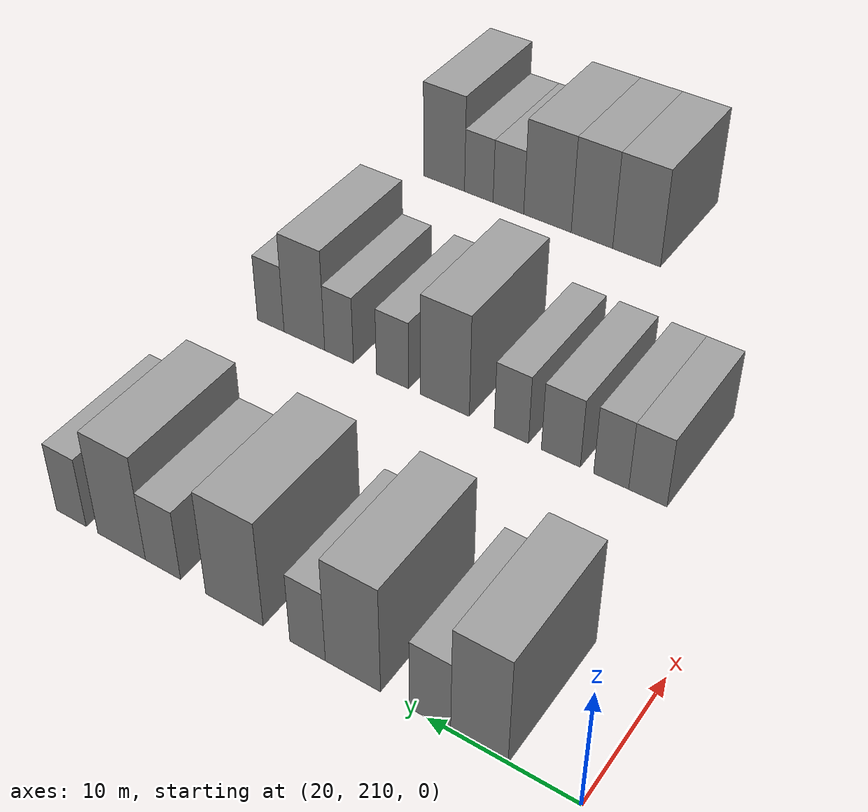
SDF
<sdf version="1.6">
 <world name="default">
  <model name="building_118">
   <static>1</static>
   <pose>25.0000 216.5295 0 0.000000 0.000000 0.000000</pose>
   <link name="link">
    <pose>0 0 4.50 0 0 0</pose>
    <collision name="collision"><geometry><box><size>10.0000 3.7720 9.0000</size></box></geometry></collision>
    <visual name="visual">
     <cast_shadows>0</cast_shadows>
     <geometry><box><size>10.0000 3.7720 9.0000</size></box></geometry>
     <material>
      <script>
       <uri>model://grey_wall/materials/scripts</uri>
       <uri>model://grey_wall/materials/textures</uri>
       <name>vrc/grey_wall</name>
      </script>
     </material>
    </visual>
   </link>
  </model>
  <model name="building_119">
   <static>1</static>
   <pose>25.0000 219.8088 0 0.000000 0.000000 0.000000</pose>
   <link name="link">
    <pose>0 0 3.00 0 0 0</pose>
    <collision name="collision"><geometry><box><size>10.0000 2.7865 6.0000</size></box></geometry></collision>
    <visual name="visual">
     <cast_shadows>0</cast_shadows>
     <geometry><box><size>10.0000 2.7865 6.0000</size></box></geometry>
     <material>
      <script>
       <uri>model://grey_wall/materials/scripts</uri>
       <uri>model://grey_wall/materials/textures</uri>
       <name>vrc/grey_wall</name>
      </script>
     </material>
    </visual>
   </link>
  </model>
  <model name="building_120">
   <static>1</static>
   <pose>25.0000 225.1686 0 0.000000 0.000000 0.000000</pose>
   <link name="link">
    <pose>0 0 4.50 0 0 0</pose>
    <collision name="collision"><geometry><box><size>10.0000 3.9332 9.0000</size></box></geometry></collision>
    <visual name="visual">
     <cast_shadows>0</cast_shadows>
     <geometry><box><size>10.0000 3.9332 9.0000</size></box></geometry>
     <material>
      <script>
       <uri>model://grey_wall/materials/scripts</uri>
       <uri>model://grey_wall/materials/textures</uri>
       <name>vrc/grey_wall</name>
      </script>
     </material>
    </visual>
   </link>
  </model>
  <model name="building_121">
   <static>1</static>
   <pose>25.0000 228.4403 0 0.000000 0.000000 0.000000</pose>
   <link name="link">
    <pose>0 0 3.00 0 0 0</pose>
    <collision name="collision"><geometry><box><size>10.0000 2.6103 6.0000</size></box></geometry></collision>
    <visual name="visual">
     <cast_shadows>0</cast_shadows>
     <geometry><box><size>10.0000 2.6103 6.0000</size></box></geometry>
     <material>
      <script>
       <uri>model://grey_wall/materials/scripts</uri>
       <uri>model://grey_wall/materials/textures</uri>
       <name>vrc/grey_wall</name>
      </script>
     </material>
    </visual>
   </link>
  </model>
  <model name="building_122">
   <static>1</static>
   <pose>25.0000 233.9627 0 0.000000 0.000000 0.000000</pose>
   <link name="link">
    <pose>0 0 4.50 0 0 0</pose>
    <collision name="collision"><geometry><box><size>10.0000 4.4344 9.0000</size></box></geometry></collision>
    <visual name="visual">
     <cast_shadows>0</cast_shadows>
     <geometry><box><size>10.0000 4.4344 9.0000</size></box></geometry>
     <material>
      <script>
       <uri>model://grey_wall/materials/scripts</uri>
       <uri>model://grey_wall/materials/textures</uri>
       <name>vrc/grey_wall</name>
      </script>
     </material>
    </visual>
   </link>
  </model>
  <model name="building_123">
   <static>1</static>
   <pose>25.0000 239.6098 0 0.000000 0.000000 0.000000</pose>
   <link name="link">
    <pose>0 0 3.00 0 0 0</pose>
    <collision name="collision"><geometry><box><size>10.0000 2.8599 6.0000</size></box></geometry></collision>
    <visual name="visual">
     <cast_shadows>0</cast_shadows>
     <geometry><box><size>10.0000 2.8599 6.0000</size></box></geometry>
     <material>
      <script>
       <uri>model://grey_wall/materials/scripts</uri>
       <uri>model://grey_wall/materials/textures</uri>
       <name>vrc/grey_wall</name>
      </script>
     </material>
    </visual>
   </link>
  </model>
  <model name="building_124">
   <static>1</static>
   <pose>25.0000 243.0283 0 0.000000 0.000000 0.000000</pose>
   <link name="link">
    <pose>0 0 4.50 0 0 0</pose>
    <collision name="collision"><geometry><box><size>10.0000 3.9770 9.0000</size></box></geometry></collision>
    <visual name="visual">
     <cast_shadows>0</cast_shadows>
     <geometry><box><size>10.0000 3.9770 9.0000</size></box></geometry>
     <material>
      <script>
       <uri>model://grey_wall/materials/scripts</uri>
       <uri>model://grey_wall/materials/textures</uri>
       <name>vrc/grey_wall</name>
      </script>
     </material>
    </visual>
   </link>
  </model>
  <model name="building_125">
   <static>1</static>
   <pose>25.0000 247.2983 0 0.000000 0.000000 0.000000</pose>
   <link name="link">
    <pose>0 0 3.00 0 0 0</pose>
    <collision name="collision"><geometry><box><size>10.0000 2.5631 6.0000</size></box></geometry></collision>
    <visual name="visual">
     <cast_shadows>0</cast_shadows>
     <geometry><box><size>10.0000 2.5631 6.0000</size></box></geometry>
     <material>
      <script>
       <uri>model://grey_wall/materials/scripts</uri>
       <uri>model://grey_wall/materials/textures</uri>
       <name>vrc/grey_wall</name>
      </script>
     </material>
    </visual>
   </link>
  </model>
  <model name="building_231">
   <static>1</static>
   <pose>47.0000 217.4649 0 0.000000 0.000000 0.000000</pose>
   <link name="link">
    <pose>0 0 3.00 0 0 0</pose>
    <collision name="collision"><geometry><box><size>10.0000 2.7879 6.0000</size></box></geometry></collision>
    <visual name="visual">
     <cast_shadows>0</cast_shadows>
     <geometry><box><size>10.0000 2.7879 6.0000</size></box></geometry>
     <material>
      <script>
       <uri>model://grey_wall/materials/scripts</uri>
       <uri>model://grey_wall/materials/textures</uri>
       <name>vrc/grey_wall</name>
      </script>
     </material>
    </visual>
   </link>
  </model>
  <model name="building_232">
   <static>1</static>
   <pose>47.0000 220.1577 0 0.000000 0.000000 0.000000</pose>
   <link name="link">
    <pose>0 0 3.00 0 0 0</pose>
    <collision name="collision"><geometry><box><size>10.0000 2.5976 6.0000</size></box></geometry></collision>
    <visual name="visual">
     <cast_shadows>0</cast_shadows>
     <geometry><box><size>10.0000 2.5976 6.0000</size></box></geometry>
     <material>
      <script>
       <uri>model://grey_wall/materials/scripts</uri>
       <uri>model://grey_wall/materials/textures</uri>
       <name>vrc/grey_wall</name>
      </script>
     </material>
    </visual>
   </link>
  </model>
  <model name="building_233">
   <static>1</static>
   <pose>47.0000 223.9513 0 0.000000 0.000000 0.000000</pose>
   <link name="link">
    <pose>0 0 3.00 0 0 0</pose>
    <collision name="collision"><geometry><box><size>10.0000 2.9897 6.0000</size></box></geometry></collision>
    <visual name="visual">
     <cast_shadows>0</cast_shadows>
     <geometry><box><size>10.0000 2.9897 6.0000</size></box></geometry>
     <material>
      <script>
       <uri>model://grey_wall/materials/scripts</uri>
       <uri>model://grey_wall/materials/textures</uri>
       <name>vrc/grey_wall</name>
      </script>
     </material>
    </visual>
   </link>
  </model>
  <model name="building_234">
   <static>1</static>
   <pose>47.0000 227.7997 0 0.000000 0.000000 0.000000</pose>
   <link name="link">
    <pose>0 0 3.00 0 0 0</pose>
    <collision name="collision"><geometry><box><size>10.0000 2.7071 6.0000</size></box></geometry></collision>
    <visual name="visual">
     <cast_shadows>0</cast_shadows>
     <geometry><box><size>10.0000 2.7071 6.0000</size></box></geometry>
     <material>
      <script>
       <uri>model://grey_wall/materials/scripts</uri>
       <uri>model://grey_wall/materials/textures</uri>
       <name>vrc/grey_wall</name>
      </script>
     </material>
    </visual>
   </link>
  </model>
  <model name="building_235">
   <static>1</static>
   <pose>47.0000 233.1592 0 0.000000 0.000000 0.000000</pose>
   <link name="link">
    <pose>0 0 4.50 0 0 0</pose>
    <collision name="collision"><geometry><box><size>10.0000 4.0118 9.0000</size></box></geometry></collision>
    <visual name="visual">
     <cast_shadows>0</cast_shadows>
     <geometry><box><size>10.0000 4.0118 9.0000</size></box></geometry>
     <material>
      <script>
       <uri>model://grey_wall/materials/scripts</uri>
       <uri>model://grey_wall/materials/textures</uri>
       <name>vrc/grey_wall</name>
      </script>
     </material>
    </visual>
   </link>
  </model>
  <model name="building_236">
   <static>1</static>
   <pose>47.0000 237.5357 0 0.000000 0.000000 0.000000</pose>
   <link name="link">
    <pose>0 0 3.00 0 0 0</pose>
    <collision name="collision"><geometry><box><size>10.0000 2.7413 6.0000</size></box></geometry></collision>
    <visual name="visual">
     <cast_shadows>0</cast_shadows>
     <geometry><box><size>10.0000 2.7413 6.0000</size></box></geometry>
     <material>
      <script>
       <uri>model://grey_wall/materials/scripts</uri>
       <uri>model://grey_wall/materials/textures</uri>
       <name>vrc/grey_wall</name>
      </script>
     </material>
    </visual>
   </link>
  </model>
  <model name="building_237">
   <static>1</static>
   <pose>47.0000 242.1757 0 0.000000 0.000000 0.000000</pose>
   <link name="link">
    <pose>0 0 3.00 0 0 0</pose>
    <collision name="collision"><geometry><box><size>10.0000 2.5387 6.0000</size></box></geometry></collision>
    <visual name="visual">
     <cast_shadows>0</cast_shadows>
     <geometry><box><size>10.0000 2.5387 6.0000</size></box></geometry>
     <material>
      <script>
       <uri>model://grey_wall/materials/scripts</uri>
       <uri>model://grey_wall/materials/textures</uri>
       <name>vrc/grey_wall</name>
      </script>
     </material>
    </visual>
   </link>
  </model>
  <model name="building_238">
   <static>1</static>
   <pose>47.0000 245.2826 0 0.000000 0.000000 0.000000</pose>
   <link name="link">
    <pose>0 0 4.50 0 0 0</pose>
    <collision name="collision"><geometry><box><size>10.0000 3.6752 9.0000</size></box></geometry></collision>
    <visual name="visual">
     <cast_shadows>0</cast_shadows>
     <geometry><box><size>10.0000 3.6752 9.0000</size></box></geometry>
     <material>
      <script>
       <uri>model://grey_wall/materials/scripts</uri>
       <uri>model://grey_wall/materials/textures</uri>
       <name>vrc/grey_wall</name>
      </script>
     </material>
    </visual>
   </link>
  </model>
  <model name="building_239">
   <static>1</static>
   <pose>47.0000 248.3482 0 0.000000 0.000000 0.000000</pose>
   <link name="link">
    <pose>0 0 3.00 0 0 0</pose>
    <collision name="collision"><geometry><box><size>10.0000 2.4560 6.0000</size></box></geometry></collision>
    <visual name="visual">
     <cast_shadows>0</cast_shadows>
     <geometry><box><size>10.0000 2.4560 6.0000</size></box></geometry>
     <material>
      <script>
       <uri>model://grey_wall/materials/scripts</uri>
       <uri>model://grey_wall/materials/textures</uri>
       <name>vrc/grey_wall</name>
      </script>
     </material>
    </visual>
   </link>
  </model>
  <model name="building_353">
   <static>1</static>
   <pose>69.0000 229.8803 0 0.000000 0.000000 0.000000</pose>
   <link name="link">
    <pose>0 0 4.50 0 0 0</pose>
    <collision name="collision"><geometry><box><size>10.0000 4.1512 9.0000</size></box></geometry></collision>
    <visual name="visual">
     <cast_shadows>0</cast_shadows>
     <geometry><box><size>10.0000 4.1512 9.0000</size></box></geometry>
     <material>
      <script>
       <uri>model://grey_wall/materials/scripts</uri>
       <uri>model://grey_wall/materials/textures</uri>
       <name>vrc/grey_wall</name>
      </script>
     </material>
    </visual>
   </link>
  </model>
  <model name="building_354">
   <static>1</static>
   <pose>69.0000 233.8037 0 0.000000 0.000000 0.000000</pose>
   <link name="link">
    <pose>0 0 4.50 0 0 0</pose>
    <collision name="collision"><geometry><box><size>10.0000 3.6956 9.0000</size></box></geometry></collision>
    <visual name="visual">
     <cast_shadows>0</cast_shadows>
     <geometry><box><size>10.0000 3.6956 9.0000</size></box></geometry>
     <material>
      <script>
       <uri>model://grey_wall/materials/scripts</uri>
       <uri>model://grey_wall/materials/textures</uri>
       <name>vrc/grey_wall</name>
      </script>
     </material>
    </visual>
   </link>
  </model>
  <model name="building_355">
   <static>1</static>
   <pose>69.0000 237.8250 0 0.000000 0.000000 0.000000</pose>
   <link name="link">
    <pose>0 0 4.50 0 0 0</pose>
    <collision name="collision"><geometry><box><size>10.0000 4.3471 9.0000</size></box></geometry></collision>
    <visual name="visual">
     <cast_shadows>0</cast_shadows>
     <geometry><box><size>10.0000 4.3471 9.0000</size></box></geometry>
     <material>
      <script>
       <uri>model://grey_wall/materials/scripts</uri>
       <uri>model://grey_wall/materials/textures</uri>
       <name>vrc/grey_wall</name>
      </script>
     </material>
    </visual>
   </link>
  </model>
  <model name="building_356">
   <static>1</static>
   <pose>69.0000 241.4344 0 0.000000 0.000000 0.000000</pose>
   <link name="link">
    <pose>0 0 3.00 0 0 0</pose>
    <collision name="collision"><geometry><box><size>10.0000 2.8717 6.0000</size></box></geometry></collision>
    <visual name="visual">
     <cast_shadows>0</cast_shadows>
     <geometry><box><size>10.0000 2.8717 6.0000</size></box></geometry>
     <material>
      <script>
       <uri>model://grey_wall/materials/scripts</uri>
       <uri>model://grey_wall/materials/textures</uri>
       <name>vrc/grey_wall</name>
      </script>
     </material>
    </visual>
   </link>
  </model>
  <model name="building_357">
   <static>1</static>
   <pose>69.0000 244.2352 0 0.000000 0.000000 0.000000</pose>
   <link name="link">
    <pose>0 0 3.00 0 0 0</pose>
    <collision name="collision"><geometry><box><size>10.0000 2.7300 6.0000</size></box></geometry></collision>
    <visual name="visual">
     <cast_shadows>0</cast_shadows>
     <geometry><box><size>10.0000 2.7300 6.0000</size></box></geometry>
     <material>
      <script>
       <uri>model://grey_wall/materials/scripts</uri>
       <uri>model://grey_wall/materials/textures</uri>
       <name>vrc/grey_wall</name>
      </script>
     </material>
    </visual>
   </link>
  </model>
  <model name="building_358">
   <static>1</static>
   <pose>69.0000 247.6032 0 0.000000 0.000000 0.000000</pose>
   <link name="link">
    <pose>0 0 4.50 0 0 0</pose>
    <collision name="collision"><geometry><box><size>10.0000 4.0060 9.0000</size></box></geometry></collision>
    <visual name="visual">
     <cast_shadows>0</cast_shadows>
     <geometry><box><size>10.0000 4.0060 9.0000</size></box></geometry>
     <material>
      <script>
       <uri>model://grey_wall/materials/scripts</uri>
       <uri>model://grey_wall/materials/textures</uri>
       <name>vrc/grey_wall</name>
      </script>
     </material>
    </visual>
   </link>
  </model>
 </world>
</sdf>
